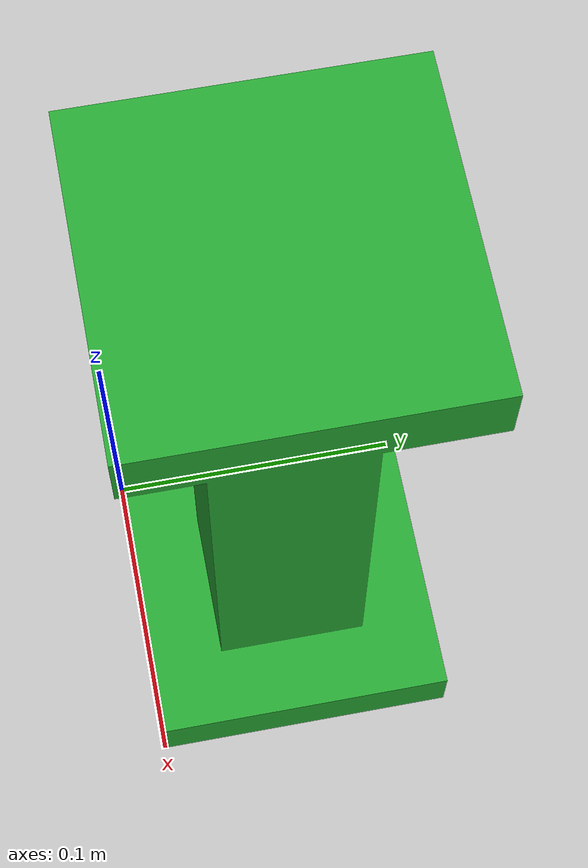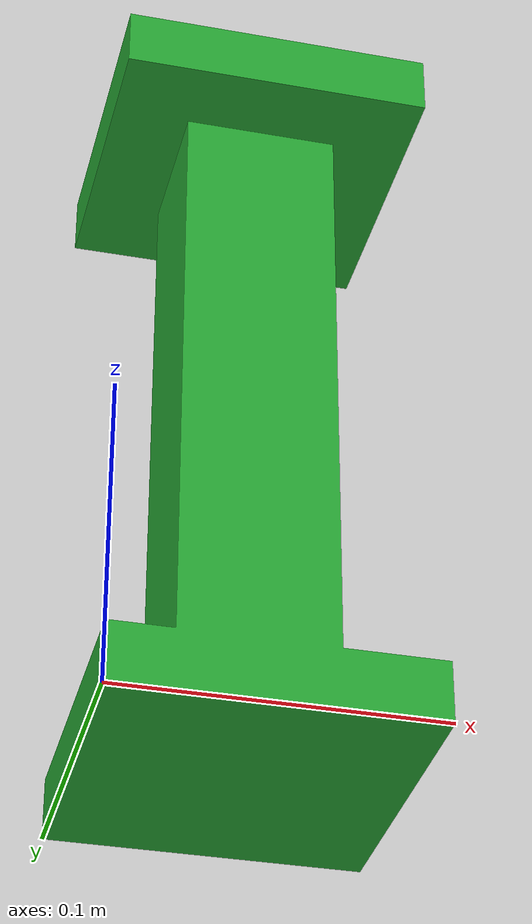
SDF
<?xml version="1.0" ?>
<sdf version="1.5">
  <model name="new_bunch">
    <static>false</static>
    <link name="link">

	<inertial>
                <pose>0.05 0.05 0.125 0 0 0</pose>
                <inertia>
                    <ixx>0.0001</ixx>
                    <ixy>0</ixy>
                    <ixz>0</ixz>
                    <iyy>0.0001</iyy>
                    <iyz>0</iyz>
                    <izz>0.0001</izz>
                </inertia>
                <mass>0.1</mass>
            </inertial>

	<collision name="collision">
        <geometry>
          <mesh>
            <uri>model://new_bunch/meshes/new_bunch.STL</uri>
            <scale>0.001 0.001 0.001</scale>
          </mesh>
        </geometry>
        <surface>
          <friction>
            <ode>
              <mu>1000</mu>
              <mu2>500</mu2>
            </ode>
          </friction>
        </surface>
      </collision>
      <visual name="visual">
        <cast_shadows>false</cast_shadows>
        <geometry>
          <mesh>
            <uri>model://new_bunch/meshes/new_bunch.STL</uri>
            <scale>0.001 0.001 0.001</scale>
          </mesh>
        </geometry>
        <material>
          <script>
            <uri>file://media/materials/scripts/gazebo.material</uri>
            <name>Gazebo/Green</name>
          </script>
        </material>
      </visual>
    </link>
  </model>
</sdf>
